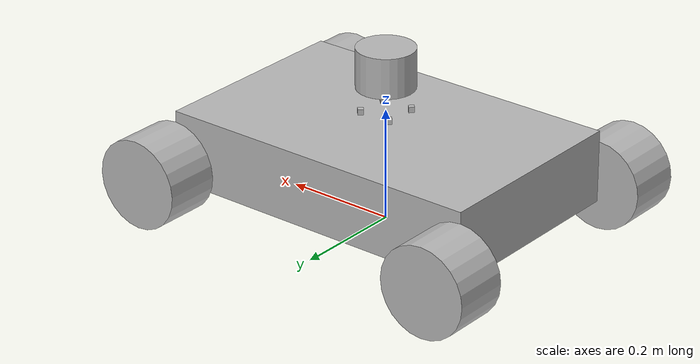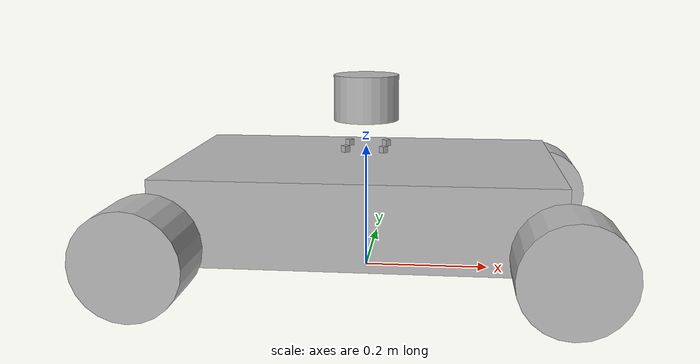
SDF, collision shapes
<?xml version='1.0'?>
<sdf version="1.4">
  <model name="ugv_1280">
        <link name='chassis'>
          <pose>0 0 .115 0 0 0</pose>

          <inertial>
            <mass value="23" />
	      <origin xyz="0 0 .180" />
	      <inertia ixx="23.0" ixy="0.0" ixz="0.0"
		iyy="23.0" iyz="0.0"
		izz="23.0" />
	   </inertial>

          <collision name='collision'>
            <geometry>
              <box>
                <size>.600 .380 .130</size>
              </box>
            </geometry>
          </collision>

          <visual name='visual'>
            <geometry>
              <box>
                <size>.600 .380 .130</size>
              </box>
            </geometry>
          </visual>
      </link>
      <link name="left_front_wheel">
        <pose>0.3 0.240 0.08 0 1.5707 1.5707</pose>
        <collision name="collision">
          <geometry>
            <cylinder>
              <radius>.08</radius>
              <length>.1</length>
            </cylinder>
          </geometry>
        </collision>
        <visual name="visual">
          <geometry>
            <cylinder>
              <radius>.08</radius>
              <length>.1</length>
            </cylinder>
          </geometry>
        </visual>
      </link>

      <link name="left_rear_wheel">
        <pose>-0.3 0.240 0.08 0 1.5707 1.5707</pose>
        <collision name="collision">
          <geometry>
            <cylinder>
              <radius>.08</radius>
              <length>.1</length>
            </cylinder>
          </geometry>
        </collision>
        <visual name="visual">
          <geometry>
            <cylinder>
              <radius>.08</radius>
              <length>.1</length>
            </cylinder>
          </geometry>
        </visual>
      </link>

      <link name="right_front_wheel">
        <pose>0.3 -0.240 0.08 0 1.5707 1.5707</pose>
        <collision name="collision">
          <geometry>
            <cylinder>
              <radius>.08</radius>
              <length>.1</length>
            </cylinder>
          </geometry>
        </collision>
        <visual name="visual">
          <geometry>
            <cylinder>
              <radius>.08</radius>
              <length>.1</length>
            </cylinder>
          </geometry>
        </visual>
      </link>

      <link name="right_rear_wheel">
        <pose>-0.3 -0.240 0.08 0 1.5707 1.5707</pose>
        <collision name="collision">
          <geometry>
            <cylinder>
              <radius>.08</radius>
              <length>.1</length>
            </cylinder>
          </geometry>
        </collision>
        <visual name="visual">
          <geometry>
            <cylinder>
              <radius>.08</radius>
              <length>.1</length>
            </cylinder>
          </geometry>
        </visual>
      </link>

      <joint type="revolute" name="left_front_wheel_hinge">
        <pose>0 0 -0.03 0 0 0</pose>
        <child>left_front_wheel</child>
        <parent>chassis</parent>
        <axis>
          <xyz>0 1 0</xyz>
        </axis>
      </joint>

      <joint type="revolute" name="left_rear_wheel_hinge">
        <pose>0 0 -0.03 0 0 0</pose>
        <child>left_rear_wheel</child>
        <parent>chassis</parent>
        <axis>
          <xyz>0 1 0</xyz>
        </axis>
      </joint>

      <joint type="revolute" name="right_front_wheel_hinge">
        <pose>0 0 0.03 0 0 0</pose>
        <child>right_front_wheel</child>
        <parent>chassis</parent>
        <axis>
          <xyz>0 1 0</xyz>
        </axis>
      </joint>

      <joint type="revolute" name="right_rear_wheel_hinge">
        <pose>0 0 0.03 0 0 0</pose>
        <child>right_rear_wheel</child>
        <parent>chassis</parent>
        <axis>
          <xyz>0 1 0</xyz>
        </axis>
      </joint>

      <include>
      <uri>model://velodyne_VLP16</uri>
      <name>lidar</name>
      <pose>0 0 .28 0 0 0</pose>
    </include>
    <joint name="lidar_joint" type="fixed">
      <child>lidar::link</child>
      <parent>chassis</parent>
    </joint>

     <include>
      <uri>model://RGB_camera_1280</uri>
      <name>right_frontal_camera</name>
      <pose>0.03 0.03 .2 0 0 0.785398</pose>
    </include>
    <joint name="right_frontal_camera_joint" type="fixed">
      <child>right_frontal_camera::link</child>
      <parent>chassis</parent>
    </joint>

    <include>
      <uri>model://RGB_camera_1280</uri>
      <name>left_frontal_camera</name>
      <pose>0.03 -0.03 .2 0 0 -0.785398</pose>
    </include>
    <joint name="left_frontal_camera_joint" type="fixed">
      <child>left_frontal_camera::link</child>
      <parent>chassis</parent>
    </joint>

    <include>
      <uri>model://RGB_camera_1280</uri>
      <name>right_rear_camera</name>
      <pose>-0.03 0.03 .2 0 0 2.3561</pose>
    </include>
    <joint name="right_rear_camera_joint" type="fixed">
      <child>right_rear_camera::link</child>
      <parent>chassis</parent>
    </joint>

    <include>
      <uri>model://RGB_camera_1280</uri>
      <name>left_rear_camera</name>
      <pose>-0.03 -0.03 .2 0 0 -2.35619</pose>
    </include>
    <joint name="left_rear_camera_joint" type="fixed">
      <child>left_rear_camera::link</child>
      <parent>chassis</parent>
    </joint>

    <plugin name="object_controller" filename="libgazebo_ros_planar_move.so">
      <commandTopic>/ugv/cmd_vel</commandTopic>
      <odometryRate>20.0</odometryRate>
      <robotBaseFrame>chassis</robotBaseFrame>
    </plugin>
  </model>
</sdf>

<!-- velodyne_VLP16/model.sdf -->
<sdf version='1.6'>
  <model name="velodyne-VLP16">
      <pose frame=''>0 0 1 0 0 0</pose>
      <link name='base_footprint'>
        <pose frame=''>0 0 0 0 0 0</pose>
        <inertial>
          <pose frame=''>0 0 0 0 0 0</pose>
          <mass>2</mass>
          <inertia>
            <ixx>3.23643</ixx>
            <ixy>0.0156863</ixy>
            <ixz>0.065702</ixz>
            <iyy>3.35996</iyy>
            <iyz>-0.00821275</iyz>
            <izz>3.32745</izz>
          </inertia>
        </inertial>
        <collision name='base_footprint_collision_1'>
          <pose frame=''>0 0 -0.00185 0 0 0</pose>
          <geometry>
            <cylinder>
              <length>0.0717</length>
              <radius>0.0516</radius>
            </cylinder>
          </geometry>
          <surface>
            <contact>
              <ode/>
            </contact>
            <friction>
              <ode/>
              <torsional>
                <ode/>
              </torsional>
            </friction>
            <bounce/>
          </surface>
          <max_contacts>10</max_contacts>
        </collision>
        <visual name='base_footprint_visual_1'>
          <pose frame=''>0 0 -0.0377 0 0 0</pose>
          <geometry>
            <mesh>
              <scale>1 1 1</scale>
              <uri>model://velodyne_VLP16/meshes/VLP16_base_1.dae</uri>
            </mesh>
          </geometry>
          <material>
            <script>
              <uri>__default__</uri>
              <name>__default__</name>
            </script>
          </material>
        </visual>
        <visual name='base_footprint_visual_2'>
          <pose frame=''>0 0 -0.0377 0 0 0</pose>
          <geometry>
            <mesh>
              <scale>1 1 1</scale>
              <uri>model://velodyne_VLP16/meshes/VLP16_base_2.dae</uri>
            </mesh>
          </geometry>
          <material>
            <script>
              <uri>__default__</uri>
              <name>__default__</name>
            </script>
          </material>
        </visual>
        <visual name='base_footprint_visual_3'>
          <pose frame=''>0 0 -0.0377 0 0 0</pose>
          <geometry>
            <mesh>
              <scale>1 1 1</scale>
              <uri>model://velodyne_VLP16/meshes/VLP16_scan.dae</uri>
            </mesh>
          </geometry>
          <material>
            <script>
              <uri>__default__</uri>
              <name>__default__</name>
            </script>
          </material>
        </visual>
        <sensor name='velodyne-VLP16' type='ray'>
          <visualize>0</visualize>
          <update_rate>10</update_rate>
          <ray>
            <scan>
              <horizontal>
                <samples>1875</samples>
                <resolution>1</resolution>
                <min_angle>-3.14159</min_angle>
                <max_angle>3.14159</max_angle>
              </horizontal>
              <vertical>
                <samples>16</samples>
                <resolution>1</resolution>
                <min_angle>-0.261799</min_angle>
                <max_angle>0.261799</max_angle>
              </vertical>
            </scan>
            <range>
              <min>0.055</min>
              <max>140</max>
              <resolution>0.001</resolution>
            </range>
            <noise>
              <type>gaussian</type>
              <mean>0</mean>
              <stddev>0</stddev>
            </noise>
          </ray>
          <plugin name='gazebo_ros_laser_controller' filename='libgazebo_ros_velodyne_laser.so'>
            <topicName>ugv/lidar</topicName>
            <frameName>UGV_base_link_frame</frameName>
            <min_range>0.9</min_range>
            <max_range>130.0</max_range>
            <gaussianNoise>0.008</gaussianNoise>
          </plugin>
          <pose frame=''>0 0 0 0 0 0</pose>
        </sensor>
        <gravity>0</gravity>
        <self_collide>0</self_collide>
        <kinematic>0</kinematic>
      </link>
    </model>
</sdf>

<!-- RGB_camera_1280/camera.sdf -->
<sdf version="1.5">
  <model name="RGB_camera_1280">
    <pose>0 0 0.05 0 0 0</pose>
    <link name="link">
      <inertial>
        <mass>0.1</mass>
      </inertial>
      <collision name="collision">
        <geometry>
          <box>
            <size>0.01 0.01 0.01</size>
          </box>
        </geometry>
      </collision>
      <visual name="visual">
        <geometry>
          <box>
            <size>0.01 0.01 0.01</size>
          </box>
        </geometry>
      </visual>
      <sensor name="camera" type="wideanglecamera">
        <camera>
          <horizontal_fov>1.18682</horizontal_fov>
          <image>
            <format>R8G8B8</format>
            <width>1280</width>
            <height>1024</height>
          </image>
          <clip>
            <near>0.01</near>
            <far>100</far>
          </clip>
          <noise>
            <type>gaussian</type>
            <mean>0.0</mean>
            <stddev>0.007</stddev>
          </noise>
        </camera>
        <always_on>1</always_on>
        <update_rate>30</update_rate>
        <plugin name="stereo_camera_controller" filename="libgazebo_ros_multicamera.so">
          <alwaysOn>true</alwaysOn>
          <updateRate>0.0</updateRate>
          <cameraName>stereo</cameraName>
          <imageTopicName>image_raw</imageTopicName>
          <cameraInfoTopicName>camera_info</cameraInfoTopicName>
          <frameName>camera_link</frameName>
          <hackBaseline>0.07</hackBaseline>
          <distortionK1>0.0</distortionK1>
          <distortionK2>0.0</distortionK2>
          <distortionK3>0.0</distortionK3>
          <distortionT1>0.0</distortionT1>
          <distortionT2>0.0</distortionT2>
        </plugin>
      </sensor>
    </link>
  </model>
</sdf>
